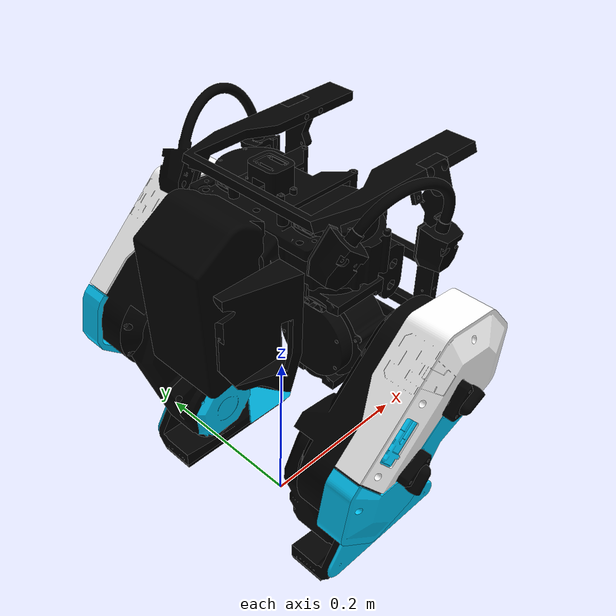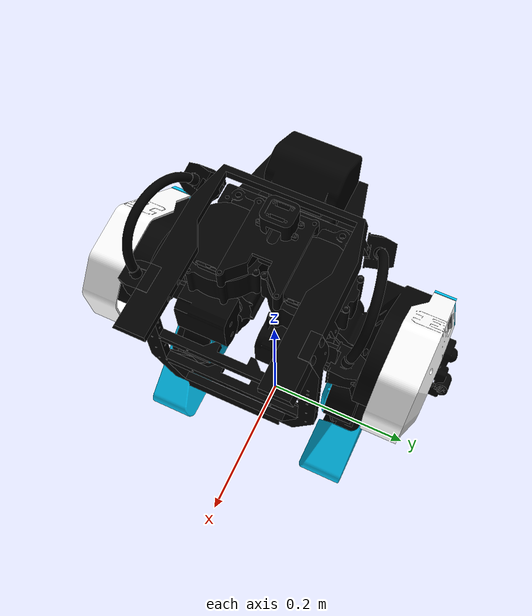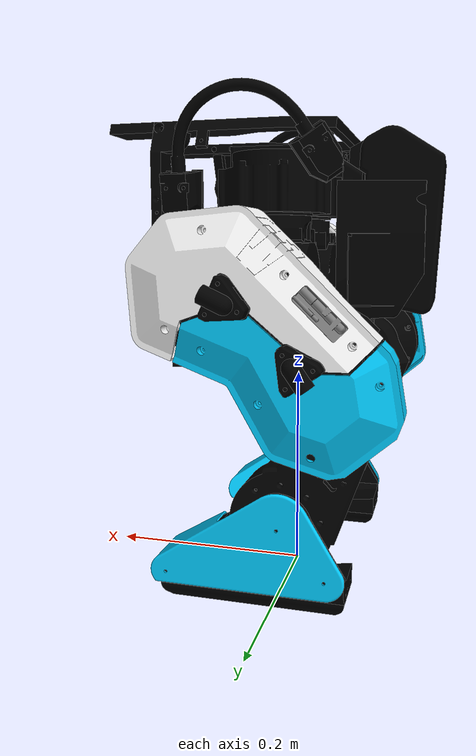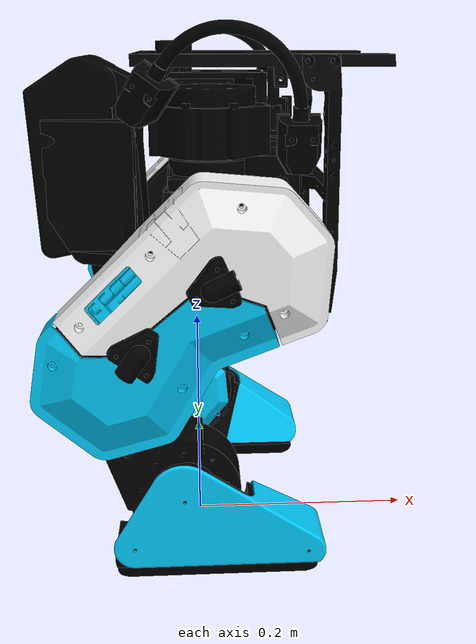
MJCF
<mujoco model="bdx-r-legs-only">
  <!--Generated from bdx.xml: leg/hip bodies plus IMU mounting chain are retained.-->
  <!--base_link visual/collision is removed; base_link inertial is only a small positive root body.-->
  <compiler angle="radian" meshdir="meshes" autolimits="true" balanceinertia="true" />
  <default>
    <default class="bdx-r">
      <site group="5" rgba="1 0 0 1" size="0.01" />
      <default class="visual">
        <geom type="mesh" contype="0" conaffinity="0" group="2" density="0" />
      </default>
      <default class="collision">
        <geom type="capsule" group="3" material="bright_orange" contype="1" conaffinity="1" />
      </default>
    </default>
  </default>
  <asset>
    <texture type="skybox" builtin="gradient" rgb1="0.3 0.5 0.7" rgb2="0 0 0" width="512" height="512" />
    <texture name="texplane" type="2d" builtin="checker" rgb1=".2 .3 .4" rgb2=".1 0.15 0.2" width="512" height="512" mark="cross" markrgb=".8 .8 .8" />
    <material name="azure" rgba="0.00784313725490196 0.8 0.996078431372549 1" />
    <material name="white" rgba="1.0 1.0 1.0 1.0" />
    <material name="black" rgba="0.0 0.0 0.0 1.0" />
    <material name="MatPlane" reflectance="0.5" texture="texplane" texrepeat="1 1" texuniform="true" />
    <material name="silver" rgba="0.75 0.75 0.75 1.0" />
    <material name="red" rgba="1 0 0 1" />
    <material name="bright_orange" rgba="1 0.65 0 0.2" />
    <mesh name="Left_Hip_Yaw_Motor" file="Left_Hip_Yaw_Motor.stl" scale="0.001 0.001 0.001" />
    <mesh name="Right_Hip_Yaw_Motor" file="Right_Hip_Yaw_Motor.stl" scale="0.001 0.001 0.001" />
    <mesh name="Right_Hip_Yaw_Support" file="Right_Hip_Yaw_Support.stl" scale="0.001 0.001 0.001" />
    <mesh name="Left_Hip_Yaw_Support" file="Left_Hip_Yaw_Support.stl" scale="0.001 0.001 0.001" />
    <mesh name="Base_Top_Clamp" file="Base_Top_Clamp.stl" scale="0.001 0.001 0.001" />
    <mesh name="Left_Holder" file="Left_Holder.stl" scale="0.001 0.001 0.001" />
    <mesh name="Right_Holder" file="Right_Holder.stl" scale="0.001 0.001 0.001" />
    <mesh name="Top_Base_Frame" file="Top_Base_Frame.stl" scale="0.001 0.001 0.001" />
    <mesh name="Front_Support" file="Front_Support.stl" scale="0.001 0.001 0.001" />
    <mesh name="Battery_Holder" file="Battery_Holder.stl" scale="0.001 0.001 0.001" />
    <mesh name="Battery" file="Battery.stl" scale="0.001 0.001 0.001" />
    <mesh name="Back_Support" file="Back_Support.stl" scale="0.001 0.001 0.001" />
    <mesh name="Left_Hip_Top_Holder" file="Left_Hip_Top_Holder.stl" scale="0.001 0.001 0.001" />
    <mesh name="Left_Hip_Roll_Motor" file="Left_Hip_Roll_Motor.stl" scale="0.001 0.001 0.001" />
    <mesh name="Left_Hip_Roll_Connector" file="Left_Hip_Roll_Connector.stl" scale="0.001 0.001 0.001" />
    <mesh name="Left_Hip_Pitch_Motor" file="Left_Hip_Pitch_Motor.stl" scale="0.001 0.001 0.001" />
    <mesh name="Left_Upper_Leg" file="Left_Upper_Leg.stl" scale="0.001 0.001 0.001" />
    <mesh name="Left_Hip_Bottom_Holder" file="Left_Hip_Bottom_Holder.stl" scale="0.001 0.001 0.001" />
    <mesh name="Left_Knee_Motor" file="Left_Knee_Motor.stl" scale="0.001 0.001 0.001" />
    <mesh name="Left_Lower_Leg" file="Left_Lower_Leg.stl" scale="0.001 0.001 0.001" />
    <mesh name="Left_Ankle_Cover" file="Left_Ankle_Cover.stl" scale="0.001 0.001 0.001" />
    <mesh name="Left_Ankle_Motor" file="Left_Ankle_Motor.stl" scale="0.001 0.001 0.001" />
    <mesh name="Left_Foot" file="Left_Foot.stl" scale="0.001 0.001 0.001" />
    <mesh name="Left_Foot_Pad" file="Left_Foot_Pad.stl" scale="0.001 0.001 0.001" />
    <mesh name="Left_Foot_Cover" file="Left_Foot_Cover.stl" scale="0.001 0.001 0.001" />
    <mesh name="Left_Upper_Leg_Cover" file="Left_Upper_Leg_Cover.stl" scale="0.001 0.001 0.001" />
    <mesh name="Left_Lower_Leg_Cover" file="Left_Lower_Leg_Cover.stl" scale="0.001 0.001 0.001" />
    <mesh name="Left_Upper_Leg_Detail" file="Left_Upper_Leg_Detail.stl" scale="0.001 0.001 0.001" />
    <mesh name="Right_Hip_Top_Holder" file="Right_Hip_Top_Holder.stl" scale="0.001 0.001 0.001" />
    <mesh name="Right_Hip_Roll_Motor" file="Right_Hip_Roll_Motor.stl" scale="0.001 0.001 0.001" />
    <mesh name="Right_Hip_Roll_Connector" file="Right_Hip_Roll_Connector.stl" scale="0.001 0.001 0.001" />
    <mesh name="Right_Hip_Bottom_Holder" file="Right_Hip_Bottom_Holder.stl" scale="0.001 0.001 0.001" />
    <mesh name="Right_Hip_Pitch_Motor" file="Right_Hip_Pitch_Motor.stl" scale="0.001 0.001 0.001" />
    <mesh name="Right_Upper_Leg" file="Right_Upper_Leg.stl" scale="0.001 0.001 0.001" />
    <mesh name="Right_Knee_Motor" file="Right_Knee_Motor.stl" scale="0.001 0.001 0.001" />
    <mesh name="Right_Lower_Leg" file="Right_Lower_Leg.stl" scale="0.001 0.001 0.001" />
    <mesh name="Right_Ankle_Motor" file="Right_Ankle_Motor.stl" scale="0.001 0.001 0.001" />
    <mesh name="Right_Foot" file="Right_Foot.stl" scale="0.001 0.001 0.001" />
    <mesh name="Right_Foot_Pad" file="Right_Foot_Pad.stl" scale="0.001 0.001 0.001" />
    <mesh name="Right_Foot_Cover" file="Right_Foot_Cover.stl" scale="0.001 0.001 0.001" />
    <mesh name="Right_Upper_Leg_Cover" file="Right_Upper_Leg_Cover.stl" scale="0.001 0.001 0.001" />
    <mesh name="Right_Lower_Leg_Cover" file="Right_Lower_Leg_Cover.stl" scale="0.001 0.001 0.001" />
    <mesh name="Right_Upper_Leg_Detail" file="Right_Upper_Leg_Detail.stl" scale="0.001 0.001 0.001" />
    <mesh name="Right_Ankle_Cover" file="Right_Ankle_Cover.stl" scale="0.001 0.001 0.001" />
    <mesh name="imu_mount" file="imu_mount.stl" scale="0.001 0.001 0.001" />
    <mesh name="imu" file="imu.stl" scale="0.001 0.001 0.001" />
  </asset>
  <worldbody>
    <body name="base_link" pos="0 0 0.25" childclass="bdx-r">
      <inertial pos="0 0 0" mass="1e-6" fullinertia="1e-9 1e-9 1e-9 0 0 0" />
      <body name="Left_Hip_Yaw_Motor" pos="-0.032622 0.068801 0.109598">
        <inertial pos="0.0452137 -0.0187317 0.0212523" mass="0.910444" fullinertia="0.000918 0.00088 0.001215 -1e-06 1e-06 6e-06" />
        <geom class="visual" mesh="Left_Hip_Yaw_Motor" material="black" pos="0.032622 -0.068801 -0.109598" />
        <body name="Left_Hip_Top_Holder" pos="0.04527 -0.018751 -0.0025">
          <joint name="Left_Hip_Yaw" axis="0.0 0.0 1.0" range="-0.2617993877991494 0.2617993877991494" />
          <inertial pos="0.00162017 0.00319912 -0.0113672" mass="0.0821127" fullinertia="3.3e-05 3.5e-05 5.6e-05 -1e-06 3e-06 1e-06" />
          <geom class="visual" mesh="Left_Hip_Top_Holder" material="black" pos="-0.012648 -0.05005 -0.107098" />
          <body name="Left_Hip_Roll_Motor" pos="0.0155 0.031251 -0.017274">
            <inertial pos="-0.02116 -0.0187285 -0.0452265" mass="0.906987" fullinertia="0.001212 0.000876 0.000914 -6e-06 1e-06 1e-06" />
            <geom class="visual" mesh="Left_Hip_Roll_Motor" material="black" pos="-0.028148 -0.081301 -0.089824" />
            <body name="Left_Hip_Roll_Connector" pos="0.0025 -0.018751 -0.04527">
              <joint name="Left_Hip_Roll" axis="-1.0 0.0 0.0" range="-0.2617993877991494 0.3490658503988659" />
              <inertial pos="0.0023355 0.0293204 9.42159e-05" mass="0.0981459" fullinertia="0.000108 2.4e-05 0.0001 1.2e-05 0 -0" />
              <geom class="visual" mesh="Left_Hip_Roll_Connector" material="black" pos="-0.030648 -0.06255 -0.044554" />
              <body name="Left_Hip_Pitch_Motor" pos="-0.008646 0.07125 0.001341">
                <joint name="Left_Hip_Pitch" axis="0.0 -1.0 0.0" range="-1.0471975511965976 0.6981317007977318" />
                <inertial pos="5.59296e-05 0.0237521 -1.95587e-05" mass="0.910452" fullinertia="0.000918 0.001215 0.00088 -1e-06 -1e-06 -6e-06" />
                <geom class="visual" mesh="Left_Hip_Pitch_Motor" material="black" pos="-0.022002 -0.1338 -0.045895" />
                <body name="Left_Upper_Leg" pos="-0.018752 0.0025 0.04527">
                  <inertial pos="-0.0242746 0.0172653 -0.0787967" mass="0.565554" fullinertia="0.001455 0.00232 0.001546 -3.2e-05 -0.00053 -9e-06" />
                  <geom class="visual" mesh="Left_Upper_Leg" material="black" pos="-0.00325 -0.1363 -0.091165" />
                  <body name="Left_Knee_Motor" pos="-0.106013 0 -0.141269">
                    <inertial pos="0.045479 0.0212521 0.0183467" mass="0.910452" fullinertia="0.00088 0.001215 0.000918 6e-06 1e-06 -1e-06" />
                    <geom class="visual" mesh="Left_Knee_Motor" material="black" pos="0.102763 -0.1363 0.050104" />
                    <body name="Left_Lower_Leg" pos="0.045459 -0.0025 0.018291">
                      <joint name="Left_Knee" axis="0.0 1.0 0.0" range="-0.9599310885968813 1.3089969389957472" />
                      <inertial pos="0.0122832 -0.0211551 -0.0653918" mass="0.386853" fullinertia="0.00123 0.001535 0.000412 2e-05 0.000321 -6.6e-05" />
                      <geom class="visual" mesh="Left_Lower_Leg" material="black" pos="0.057304 -0.1338 0.031813" />
                      <body name="Left_Ankle_Cover" pos="0.072419 -0.045377 -0.097579">
                        <inertial pos="-0.0272704 -0.00635427 -0.0324997" mass="0.0142021" fullinertia="7e-06 1.5e-05 7e-06 -0 -0 -0" />
                        <geom class="visual" mesh="Left_Ankle_Cover" material="azure" pos="-0.015115 -0.088423 0.129392" />
                      </body>
                      <body name="Left_Ankle_Motor" pos="0.009131 -0.00934 -0.124166">
                        <inertial pos="0.0365342 -0.0168978 -0.00724371" mass="0.43363" fullinertia="0.000297 0.000423 0.000296 -1e-06 6e-06 -2e-06" />
                        <geom class="visual" mesh="Left_Ankle_Motor" material="black" pos="0.048173 -0.12446 0.155979" />
                        <body name="Left_Foot" pos="0.036018 0.004 -0.005913">
                          <joint name="Left_Ankle" axis="-0.0 -1.0 -0.0" range="-0.785 1.2217304763960306" />
                          <inertial pos="0.02614 -0.00466554 -0.039192" mass="0.253739" fullinertia="0.000195 0.000667 0.0006 1.9e-05 2.5e-05 -4.5e-05" />
                          <geom class="visual" mesh="Left_Foot" material="black" pos="0.012155 -0.12846 0.161892" />
                          <body name="Left_Foot_Pad" pos="0.222432 -0.025632 0.027724">
                            <inertial pos="-0.195252 0.00765129 -0.0993291" mass="0.111203" fullinertia="1.6e-05 0.000254 0.000264 0 0 -0" />
                            <geom class="visual" mesh="Left_Foot_Pad" material="black" pos="-0.210277 -0.102828 0.134168" />
                            <geom class="collision" name="left_foot_collision1" size="0.005" fromto="-0.2678 -0.0065 -0.1087  -0.1228 -0.0065 -0.1087" />
                            <geom class="collision" name="left_foot_collision2" size="0.005" fromto="-0.2628 -0.0025 -0.1087  -0.1278 -0.0025 -0.1087" />
                            <geom class="collision" name="left_foot_collision3" size="0.005" fromto="-0.2578  0.0015 -0.1087  -0.1328  0.0015 -0.1087" />
                            <geom class="collision" name="left_foot_collision4" size="0.005" fromto="-0.2578  0.0055 -0.1087  -0.1328  0.0055 -0.1087" />
                            <geom class="collision" name="left_foot_collision5" size="0.005" fromto="-0.2578  0.0095 -0.1087  -0.1328  0.0095 -0.1087" />
                            <geom class="collision" name="left_foot_collision6" size="0.005" fromto="-0.2628  0.0135 -0.1087  -0.1278  0.0135 -0.1087" />
                            <geom class="collision" name="left_foot_collision7" size="0.005" fromto="-0.2678  0.0175 -0.1087  -0.1228  0.0175 -0.1087" />
                          </body>
                          <body name="Left_Foot_Cover" pos="0.102636 0.0135 -0.048903">
                            <inertial pos="-0.053452 -0.0143058 0.0213113" mass="0.0375237" fullinertia="6.4e-05 0.000132 0.000116 2.4e-05 8e-06 5e-06" />
                            <geom class="visual" mesh="Left_Foot_Cover" material="azure" pos="-0.090481 -0.14196 0.210795" />
                          </body>
                          <site name="left_foot" pos="0.035 -0.025682 -0.071" size="0.01" rgba="1 0 0 1" />
                        </body>
                      </body>
                    </body>
                  </body>
                  <body name="Left_Upper_Leg_Cover" pos="0.058901 0.0465 -0.075069">
                    <inertial pos="-0.0409403 0.000936835 0.0389855" mass="0.0636117" fullinertia="9e-05 0.000296 0.000237 9e-06 -8e-06 5e-06" />
                    <geom class="visual" mesh="Left_Upper_Leg_Cover" material="white" pos="-0.062151 -0.1828 -0.016096" />
                    <body name="Left_Upper_Leg_Detail" pos="0.022141 0.011874 0.129718">
                      <inertial pos="-0.140135 -0.00116722 -0.114257" mass="0.0049676" fullinertia="1e-06 2e-06 1e-06 0 0 0" />
                      <geom class="visual" mesh="Left_Upper_Leg_Detail" pos="-0.084292 -0.194674 -0.145814" />
                    </body>
                  </body>
                  <body name="Left_Lower_Leg_Cover" pos="-0.10624 0.0465 -0.11194">
                    <inertial pos="0.0656069 -0.000288225 -0.0209171" mass="0.0918022" fullinertia="0.0001 0.000359 0.00029 9e-06 -5.3e-05 -3e-06" />
                    <geom class="visual" mesh="Left_Lower_Leg_Cover" material="azure" pos="0.10299 -0.1828 0.020775" />
                  </body>
                </body>
              </body>
            </body>
            <body name="Left_Hip_Bottom_Holder" pos="0 0 -0.09054">
              <inertial pos="-0.0132831 -0.0263267 -0.00296785" mass="0.060065" fullinertia="2.2e-05 2.5e-05 3.8e-05 -0 -3e-06 -0" />
              <geom class="visual" mesh="Left_Hip_Bottom_Holder" material="black" pos="-0.028148 -0.081301 0.000716" />
            </body>
          </body>
        </body>
      </body>
      <body name="Right_Hip_Yaw_Motor" pos="-0.032622 -0.068701 0.109598">
        <inertial pos="0.0453267 0.0187317 0.0212523" mass="0.910444" fullinertia="0.000918 0.00088 0.001215 -1e-06 -1e-06 -6e-06" />
        <geom class="visual" mesh="Right_Hip_Yaw_Motor" material="black" pos="0.032622 0.068701 -0.109598" />
        <body name="Right_Hip_Top_Holder" pos="0.04527 0.018751 -0.0025">
          <joint name="Right_Hip_Yaw" axis="0.0 0.0 1.0" range="-0.2617993877991494 0.2617993877991494" />
          <inertial pos="0.00162017 -0.00319911 -0.0131072" mass="0.0821127" fullinertia="3.3e-05 3.5e-05 5.6e-05 1e-06 3e-06 -1e-06" />
          <geom class="visual" mesh="Right_Hip_Top_Holder" material="black" pos="-0.012648 0.04995 -0.107098" />
          <body name="Right_Hip_Roll_Motor" pos="0.0155 0.006251 -0.019014">
            <inertial pos="-0.02116 -0.0187735 -0.0452265" mass="0.906987" fullinertia="0.001212 0.000876 0.000914 6e-06 1e-06 -1e-06" />
            <geom class="visual" mesh="Right_Hip_Roll_Motor" material="black" pos="-0.028148 0.043699 -0.088084" />
            <body name="Right_Hip_Roll_Connector" pos="0.0025 -0.018751 -0.04527">
              <joint name="Right_Hip_Roll" axis="-1.0 0.0 0.0" range="-0.3490658503988659 0.2617993877991494" />
              <inertial pos="0.0023355 -0.0293203 9.42157e-05" mass="0.0981459" fullinertia="0.000108 2.4e-05 0.0001 -1.2e-05 0 0" />
              <geom class="visual" mesh="Right_Hip_Roll_Connector" material="black" pos="-0.030648 0.06245 -0.042814" />
              <body name="Right_Hip_Pitch_Motor" pos="-0.008646 -0.07125 0.001341">
                <joint name="Right_Hip_Pitch" axis="0.0 1.0 0.0" range="-0.6981317007977318 1.0471975511965976" />
                <inertial pos="5.59947e-05 -0.0237519 -1.92588e-05" mass="0.910444" fullinertia="0.000918 0.001215 0.00088 1e-06 -1e-06 6e-06" />
                <geom class="visual" mesh="Right_Hip_Pitch_Motor" material="black" pos="-0.022002 0.1337 -0.044155" />
                <body name="Right_Upper_Leg" pos="-0.018752 -0.0025 0.04527">
                  <inertial pos="-0.024281 -0.0172422 -0.0787691" mass="0.565588" fullinertia="0.001453 0.00232 0.001545 3.1e-05 -0.00053 9e-06" />
                  <geom class="visual" mesh="Right_Upper_Leg" material="black" pos="-0.00325 0.1362 -0.089425" />
                  <body name="Right_Knee_Motor" pos="-0.078844 0 -0.07752">
                    <inertial pos="0.0183097 -0.0212519 -0.0454022" mass="0.910444" fullinertia="0.00088 0.001215 0.000918 -6e-06 1e-06 1e-06" />
                    <geom class="visual" mesh="Right_Knee_Motor" material="black" pos="0.075594 0.1362 -0.011905" />
                    <body name="Right_Lower_Leg" pos="0.01829 0.0025 -0.045458">
                      <joint name="Right_Knee" axis="-0.0 -1.0 -0.0" range="-1.3089969389957472 0.9599310885968813" />
                      <inertial pos="0.0122832 0.0211551 -0.0653918" mass="0.386853" fullinertia="0.00123 0.001535 0.000412 -2e-05 0.000321 6.6e-05" />
                      <geom class="visual" mesh="Right_Lower_Leg" material="black" pos="0.057304 0.1337 0.033553" />
                      <body name="Right_Ankle_Motor" pos="0.044717 0.00934 -0.093581">
                        <inertial pos="0.000948222 0.0168978 -0.0378287" mass="0.43363" fullinertia="0.000297 0.000423 0.000296 1e-06 6e-06 2e-06" />
                        <geom class="visual" mesh="Right_Ankle_Motor" material="black" pos="0.012587 0.12436 0.127134" />
                        <body name="Right_Foot" pos="0.000432 -0.004 -0.036498">
                          <joint name="Right_Ankle" axis="0.0 1.0 0.0" range="-1.2217304763960306 0.785" />
                          <inertial pos="0.02614 0.00466555 -0.039192" mass="0.253739" fullinertia="0.000195 0.000667 0.0006 -1.9e-05 2.5e-05 4.5e-05" />
                          <geom class="visual" mesh="Right_Foot" material="black" pos="0.012155 0.12836 0.163632" />
                          <body name="Right_Foot_Pad" pos="0.10668 0.018025 -0.059278">
                            <inertial pos="-0.0794999 4.53063e-07 -0.0123271" mass="0.111203" fullinertia="1.6e-05 0.000254 0.000264 -0 0 0" />
                            <geom class="visual" mesh="Right_Foot_Pad" material="black" pos="-0.094525 0.110335 0.22291" />
                            <geom class="collision" name="right_foot_collision1" size="0.005" fromto="-0.152  0.014 -0.02  -0.007  0.014 -0.02" />
                            <geom class="collision" name="right_foot_collision2" size="0.005" fromto="-0.147  0.01  -0.02  -0.012  0.01  -0.02" />
                            <geom class="collision" name="right_foot_collision3" size="0.005" fromto="-0.142  0.006 -0.02  -0.017  0.006 -0.02" />
                            <geom class="collision" name="right_foot_collision4" size="0.005" fromto="-0.142  0.002 -0.02  -0.017  0.002 -0.02" />
                            <geom class="collision" name="right_foot_collision5" size="0.005" fromto="-0.142 -0.002 -0.02  -0.017 -0.002 -0.02" />
                            <geom class="collision" name="right_foot_collision6" size="0.005" fromto="-0.147 -0.006 -0.02  -0.012 -0.006 -0.02" />
                            <geom class="collision" name="right_foot_collision7" size="0.005" fromto="-0.152 -0.01  -0.02  -0.007 -0.01  -0.02" />
                          </body>
                          <body name="Right_Foot_Cover" pos="-0.041752 -0.0135 -0.042544">
                            <inertial pos="0.09107 0.0144107 0.015231" mass="0.0375241" fullinertia="6.9e-05 0.000136 0.000117 -2.5e-05 7e-06 -7e-06" />
                            <geom class="visual" mesh="Right_Foot_Cover" material="azure" pos="0.053907 0.14186 0.206176" />
                          </body>
                          <site name="right_foot" pos="0.035 0.018025 -0.071" size="0.01" rgba="1 0 0 1" />
                        </body>
                      </body>
                      <body name="Right_Ankle_Cover" pos="0.017878 0.045377 -0.162578">
                        <inertial pos="0.0272706 0.00635428 0.0324993" mass="0.0142021" fullinertia="7e-06 1.5e-05 7e-06 0 -0 0" />
                        <geom class="visual" mesh="Right_Ankle_Cover" material="azure" pos="0.039426 0.088323 0.196131" />
                      </body>
                    </body>
                  </body>
                  <body name="Right_Upper_Leg_Cover" pos="0.058901 -0.0465 -0.075069">
                    <inertial pos="-0.0409403 -0.00093683 0.0389855" mass="0.0636117" fullinertia="9e-05 0.000296 0.000237 -9e-06 -8e-06 -5e-06" />
                    <geom class="visual" mesh="Right_Upper_Leg_Cover" material="white" pos="-0.062151 0.1827 -0.014356" />
                    <body name="Right_Upper_Leg_Detail" pos="0.022141 -0.011774 0.127978">
                      <inertial pos="-0.137951 0.000535076 -0.11224" mass="0.0049676" fullinertia="1e-06 2e-06 1e-06 0 0 0" />
                      <geom class="visual" mesh="Right_Upper_Leg_Detail" material="azure" pos="-0.084292 0.194474 -0.142334" />
                    </body>
                  </body>
                  <body name="Right_Lower_Leg_Cover" pos="-0.10624 -0.0465 -0.11194">
                    <inertial pos="0.0636909 -0.00605024 -0.0174859" mass="0.0493738" fullinertia="5.4e-05 0.000184 0.000145 -2e-06 -2.8e-05 4e-06" />
                    <geom class="visual" mesh="Right_Lower_Leg_Cover" material="azure" pos="0.10299 0.1827 0.022515" />
                  </body>
                </body>
              </body>
            </body>
            <body name="Right_Hip_Bottom_Holder" pos="0 0 -0.09054">
              <inertial pos="-0.0132831 -0.0111753 -0.00296785" mass="0.060065" fullinertia="2.2e-05 2.5e-05 3.8e-05 0 -3e-06 0" />
              <geom class="visual" mesh="Right_Hip_Bottom_Holder" material="black" pos="-0.028148 0.043699 0.002456" />
            </body>
          </body>
        </body>
      </body>
      <body name="Right_Hip_Yaw_Support" pos="0.070648 -0.0177 0.088154">
        <inertial pos="-0.00233655 -0.0297011 -0.00579523" mass="0.110967" fullinertia="6.5e-05 4.4e-05 4.5e-05 -1e-06 5e-06 1e-06" />
        <geom class="visual" mesh="Right_Hip_Yaw_Support" material="black" pos="-0.070648 0.0177 -0.088154" />
      </body>
      <body name="Left_Hip_Yaw_Support" pos="0.070648 0.0178 0.088154">
        <inertial pos="-0.00240657 0.0297873 -0.00598472" mass="0.107881" fullinertia="6.3e-05 4.2e-05 4.4e-05 1e-06 5e-06 -2e-06" />
        <geom class="visual" mesh="Left_Hip_Yaw_Support" material="black" pos="-0.070648 -0.0178 -0.088154" />
      </body>
      <body name="Base_Top_Clamp" pos="-0.041248 -0.05995 0.148898">
        <inertial pos="0.0115715 0.06 0.00483101" mass="0.0462886" fullinertia="6.4e-05 1.2e-05 7.5e-05 0 -0 -0" />
        <geom class="visual" mesh="Base_Top_Clamp" material="black" pos="0.041248 0.05995 -0.148898" />
        <body name="imu_mount" pos="0.008626 0.091249 0.01">
          <inertial pos="0.0455002 -0.031249 0.00964534" mass="0.05" fullinertia="1.5e-05 2.1e-05 3.4e-05 0 2e-06 0" />
          <geom class="visual" mesh="imu_mount" material="black" pos="0.032622 -0.031299 -0.158898" />
          <body name="imu" pos="0.00865 -0.010349 0.015">
            <inertial pos="0.00758057 -0.0209 0.0136918" mass="0.1" fullinertia="3e-06 2e-06 3e-06 0 -0 -0" />
            <geom class="visual" mesh="imu" material="black" pos="0.023972 -0.02095 -0.173898" />
          </body>
          <site name="imu" size="0.01" pos="0.05 -0.03 0.02" />
        </body>
      </body>
      <body name="Left_Holder" pos="-0.042349 0.091047 0.150304">
        <inertial pos="0.0654654 0.0202797 9.29671e-05" mass="0.0360922" fullinertia="3.2e-05 0.000147 0.000124 -1.7e-05 2.9e-05 1e-06" />
        <geom class="visual" mesh="Left_Holder" material="black" pos="0.042349 -0.091047 -0.150304" />
      </body>
      <body name="Top_Base_Frame" pos="-0.032533 0.084396 0.175919">
        <inertial pos="0.0876581 -0.084346 0.00853271" mass="0.119509" fullinertia="0.00068 0.000477 0.001154 0 -5e-06 0" />
        <geom class="visual" mesh="Top_Base_Frame" material="black" pos="0.032533 -0.084396 -0.175919" />
      </body>
      <body name="Front_Support" pos="0.104552 0.01005 0.079856">
        <inertial pos="0.00267539 -0.01 -0.0165269" mass="0.184244" fullinertia="0.001929 0.000901 0.001041 0 1.1e-05 0" />
        <geom class="visual" mesh="Front_Support" material="black" pos="-0.104552 -0.01005 -0.079856" />
      </body>
      <body name="Right_Holder" pos="-0.042349 -0.090947 0.150304">
        <inertial pos="0.0661003 -0.0203252 -0.000478187" mass="0.0361128" fullinertia="3.2e-05 0.000147 0.000124 1.7e-05 2.9e-05 -1e-06" />
        <geom class="visual" mesh="Right_Holder" material="black" pos="0.042349 0.090947 -0.150304" />
      </body>
      <body name="Battery_Holder" pos="-0.042025 5e-05 0.002134">
        <inertial pos="-0.0112596 -1.37984e-08 0.0742143" mass="0.162092" fullinertia="0.000431 0.000313 0.000128 -0 1e-05 -0" />
        <geom class="visual" mesh="Battery_Holder" material="black" pos="0.042025 -5e-05 -0.002134" />
        <body name="Battery" pos="0.091613 -0.02775 0.230592">
          <inertial pos="-0.147625 0.02745 -0.131786" mass="1.272" fullinertia="0.002821 0.002743 0.001123 -0 -3.4e-05 0" />
          <geom class="visual" mesh="Battery" material="black" pos="-0.049588 0.0277 -0.232726" />
        </body>
        <body name="Back_Support" pos="-0.018024 0 0">
          <inertial pos="-0.0161042 0.00083864 0.0763859" mass="0.198185" fullinertia="0.000997 0.00052 0.000641 1e-06 5.1e-05 -4e-06" />
          <geom class="visual" mesh="Back_Support" material="black" pos="0.060049 -5e-05 -0.002134" />
        </body>
      </body>
      <freejoint />
    </body>
  </worldbody>
  <actuator>
    <position name="Left_Hip_Yaw_servo" joint="Left_Hip_Yaw" kp="1" />
    <position name="Left_Hip_Roll_servo" joint="Left_Hip_Roll" kp="1" />
    <position name="Left_Hip_Pitch_servo" joint="Left_Hip_Pitch" kp="1" />
    <position name="Left_Knee_servo" joint="Left_Knee" kp="1" />
    <position name="Left_Ankle_servo" joint="Left_Ankle" kp="1" />
    <position name="Right_Hip_Yaw_servo" joint="Right_Hip_Yaw" kp="1" />
    <position name="Right_Hip_Roll_servo" joint="Right_Hip_Roll" kp="1" />
    <position name="Right_Hip_Pitch_servo" joint="Right_Hip_Pitch" kp="1" />
    <position name="Right_Knee_servo" joint="Right_Knee" kp="1" />
    <position name="Right_Ankle_servo" joint="Right_Ankle" kp="1" />
  </actuator>
  <sensor>
    <gyro name="imu_ang_vel" site="imu" />
    <velocimeter name="imu_lin_vel" site="imu" />
    <accelerometer name="imu_lin_acc" site="imu" />
    <subtreeangmom name="root_angmom" body="base_link" />
  </sensor>
</mujoco>
